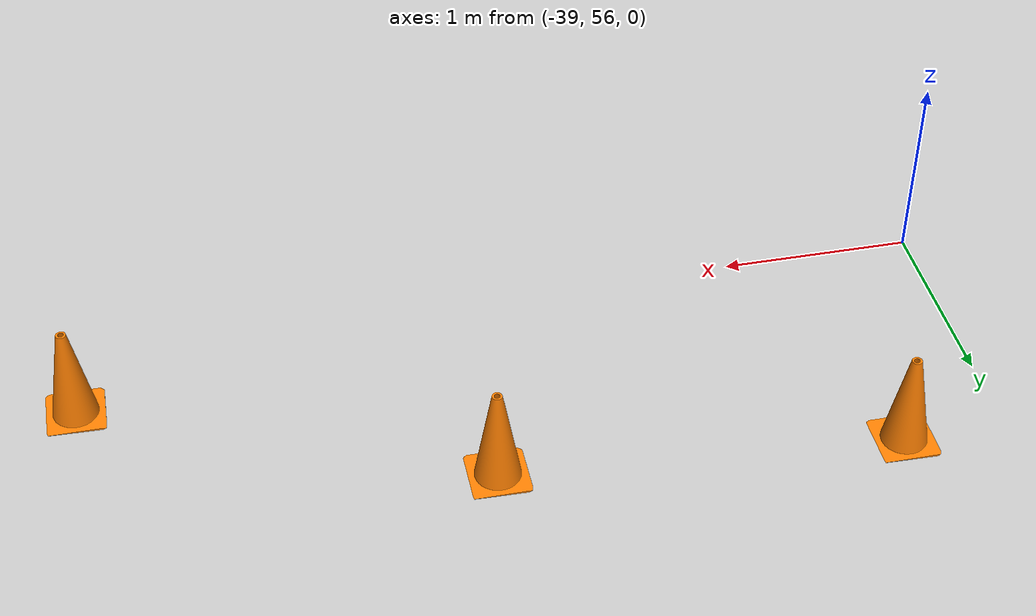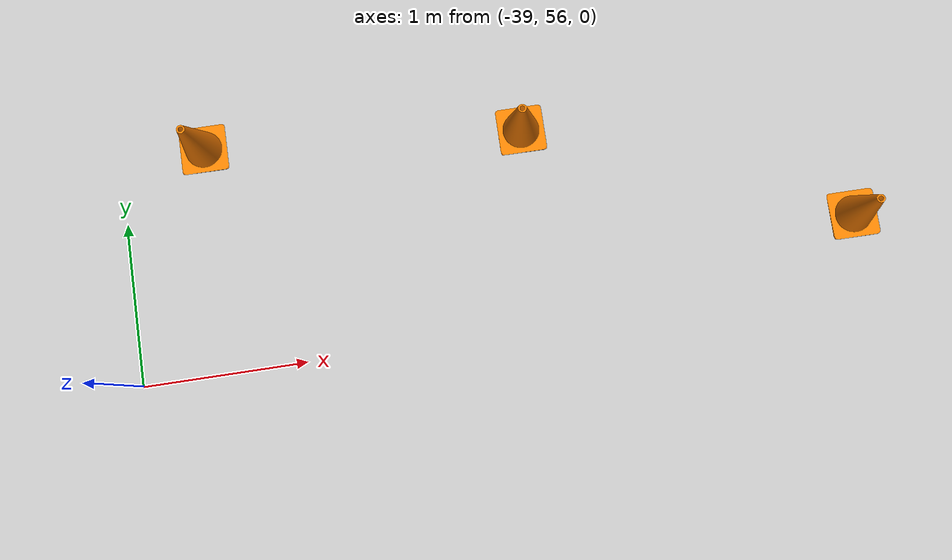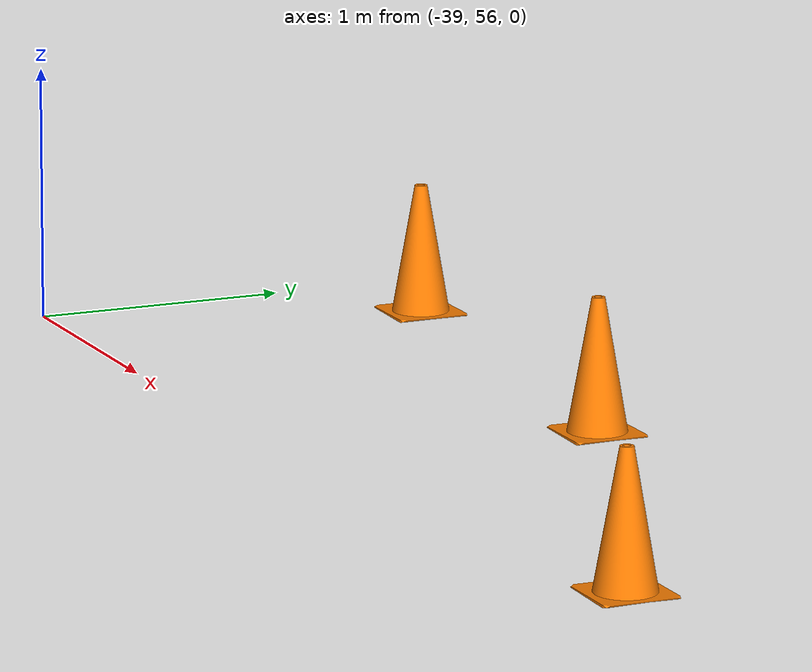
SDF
<sdf version="1.7">
 <world name="IARRC Urban">
  <model name="TallerCone_clone_102">
   <link name="link_0">
    <inertial>
     <mass>0.068</mass>
     <inertia>
      <ixx>0.000367263</ixx>
      <ixy>0</ixy>
      <ixz>0</ixz>
      <iyy>0.000367263</iyy>
      <iyz>0</iyz>
      <izz>0.000165927</izz>
     </inertia>
    </inertial>
    <visual name="visual">
     <geometry><mesh><uri>model://TallerCone/traffic_cone.stl</uri><scale>0.01 0.01 0.01</scale></mesh></geometry>
     <material>
      <lighting>1</lighting>
      <script><uri>file://media/materials/scripts/gazebo.material</uri><name>Gazebo/Grey</name></script>
      <ambient>0.4 0.2 0 1</ambient>
      <diffuse>1 0.5 0 1</diffuse>
      <specular>0.01 0.01 0.01 1</specular>
      <emissive>0 0 0 1</emissive>
     </material>
    </visual>
    <collision name="collision">
     <geometry><mesh><uri>model://TallerCone/traffic_cone.stl</uri></mesh></geometry>
     <surface>
      <friction>
       <ode><mu>1</mu><mu2>1</mu2><fdir1>0 0 0</fdir1><slip1>0</slip1><slip2>0</slip2></ode>
       <torsional>
        <coefficient>1</coefficient>
        <patch_radius>0</patch_radius>
        <surface_radius>0</surface_radius>
        <use_patch_radius>1</use_patch_radius>
        <ode><slip>0</slip></ode>
       </torsional>
      </friction>
      <bounce><restitution_coefficient>0</restitution_coefficient><threshold>1e+06</threshold></bounce>
      <contact>
       <collide_without_contact>0</collide_without_contact>
       <collide_without_contact_bitmask>1</collide_without_contact_bitmask>
       <collide_bitmask>1</collide_bitmask>
       <ode>
        <soft_cfm>0</soft_cfm>
        <soft_erp>0.2</soft_erp>
        <kp>1e+13</kp>
        <kd>1</kd>
        <max_vel>0.01</max_vel>
        <min_depth>0</min_depth>
       </ode>
       <bullet>
        <split_impulse>1</split_impulse>
        <split_impulse_penetration_threshold>-0.01</split_impulse_penetration_threshold>
        <soft_cfm>0</soft_cfm>
        <soft_erp>0.2</soft_erp>
        <kp>1e+13</kp>
        <kd>1</kd>
       </bullet>
      </contact>
     </surface>
    </collision>
   </link>
   <static>1</static>
   <pose>-34.5461 56.405 -0.034283 0 -0 0</pose>
  </model>
  <model name="TallerCone_clone_103">
   <link name="link_0">
    <inertial>
     <mass>0.068</mass>
     <inertia>
      <ixx>0.000367263</ixx>
      <ixy>0</ixy>
      <ixz>0</ixz>
      <iyy>0.000367263</iyy>
      <iyz>0</iyz>
      <izz>0.000165927</izz>
     </inertia>
    </inertial>
    <visual name="visual">
     <geometry><mesh><uri>model://TallerCone/traffic_cone.stl</uri><scale>0.01 0.01 0.01</scale></mesh></geometry>
     <material>
      <lighting>1</lighting>
      <script><uri>file://media/materials/scripts/gazebo.material</uri><name>Gazebo/Grey</name></script>
      <ambient>0.4 0.2 0 1</ambient>
      <diffuse>1 0.5 0 1</diffuse>
      <specular>0.01 0.01 0.01 1</specular>
      <emissive>0 0 0 1</emissive>
     </material>
    </visual>
    <collision name="collision">
     <geometry><mesh><uri>model://TallerCone/traffic_cone.stl</uri></mesh></geometry>
     <surface>
      <friction>
       <ode><mu>1</mu><mu2>1</mu2><fdir1>0 0 0</fdir1><slip1>0</slip1><slip2>0</slip2></ode>
       <torsional>
        <coefficient>1</coefficient>
        <patch_radius>0</patch_radius>
        <surface_radius>0</surface_radius>
        <use_patch_radius>1</use_patch_radius>
        <ode><slip>0</slip></ode>
       </torsional>
      </friction>
      <bounce><restitution_coefficient>0</restitution_coefficient><threshold>1e+06</threshold></bounce>
      <contact>
       <collide_without_contact>0</collide_without_contact>
       <collide_without_contact_bitmask>1</collide_without_contact_bitmask>
       <collide_bitmask>1</collide_bitmask>
       <ode>
        <soft_cfm>0</soft_cfm>
        <soft_erp>0.2</soft_erp>
        <kp>1e+13</kp>
        <kd>1</kd>
        <max_vel>0.01</max_vel>
        <min_depth>0</min_depth>
       </ode>
       <bullet>
        <split_impulse>1</split_impulse>
        <split_impulse_penetration_threshold>-0.01</split_impulse_penetration_threshold>
        <soft_cfm>0</soft_cfm>
        <soft_erp>0.2</soft_erp>
        <kp>1e+13</kp>
        <kd>1</kd>
       </bullet>
      </contact>
     </surface>
    </collision>
   </link>
   <static>1</static>
   <pose>-36.5027 57.2389 -0.034283 0 -0 0</pose>
  </model>
  <model name="TallerCone_clone_104">
   <link name="link_0">
    <inertial>
     <mass>0.068</mass>
     <inertia>
      <ixx>0.000367263</ixx>
      <ixy>0</ixy>
      <ixz>0</ixz>
      <iyy>0.000367263</iyy>
      <iyz>0</iyz>
      <izz>0.000165927</izz>
     </inertia>
    </inertial>
    <visual name="visual">
     <geometry><mesh><uri>model://TallerCone/traffic_cone.stl</uri><scale>0.01 0.01 0.01</scale></mesh></geometry>
     <material>
      <lighting>1</lighting>
      <script><uri>file://media/materials/scripts/gazebo.material</uri><name>Gazebo/Grey</name></script>
      <ambient>0.4 0.2 0 1</ambient>
      <diffuse>1 0.5 0 1</diffuse>
      <specular>0.01 0.01 0.01 1</specular>
      <emissive>0 0 0 1</emissive>
     </material>
    </visual>
    <collision name="collision">
     <geometry><mesh><uri>model://TallerCone/traffic_cone.stl</uri></mesh></geometry>
     <surface>
      <friction>
       <ode><mu>1</mu><mu2>1</mu2><fdir1>0 0 0</fdir1><slip1>0</slip1><slip2>0</slip2></ode>
       <torsional>
        <coefficient>1</coefficient>
        <patch_radius>0</patch_radius>
        <surface_radius>0</surface_radius>
        <use_patch_radius>1</use_patch_radius>
        <ode><slip>0</slip></ode>
       </torsional>
      </friction>
      <bounce><restitution_coefficient>0</restitution_coefficient><threshold>1e+06</threshold></bounce>
      <contact>
       <collide_without_contact>0</collide_without_contact>
       <collide_without_contact_bitmask>1</collide_without_contact_bitmask>
       <collide_bitmask>1</collide_bitmask>
       <ode>
        <soft_cfm>0</soft_cfm>
        <soft_erp>0.2</soft_erp>
        <kp>1e+13</kp>
        <kd>1</kd>
        <max_vel>0.01</max_vel>
        <min_depth>0</min_depth>
       </ode>
       <bullet>
        <split_impulse>1</split_impulse>
        <split_impulse_penetration_threshold>-0.01</split_impulse_penetration_threshold>
        <soft_cfm>0</soft_cfm>
        <soft_erp>0.2</soft_erp>
        <kp>1e+13</kp>
        <kd>1</kd>
       </bullet>
      </contact>
     </surface>
    </collision>
   </link>
   <static>1</static>
   <pose>-38.4829 57.4098 -0.034283 0 -0 0</pose>
  </model>
 </world>
</sdf>
